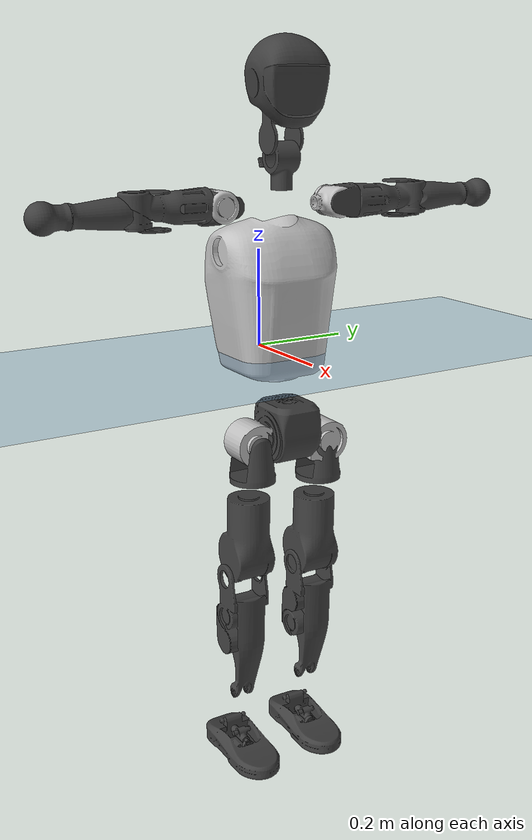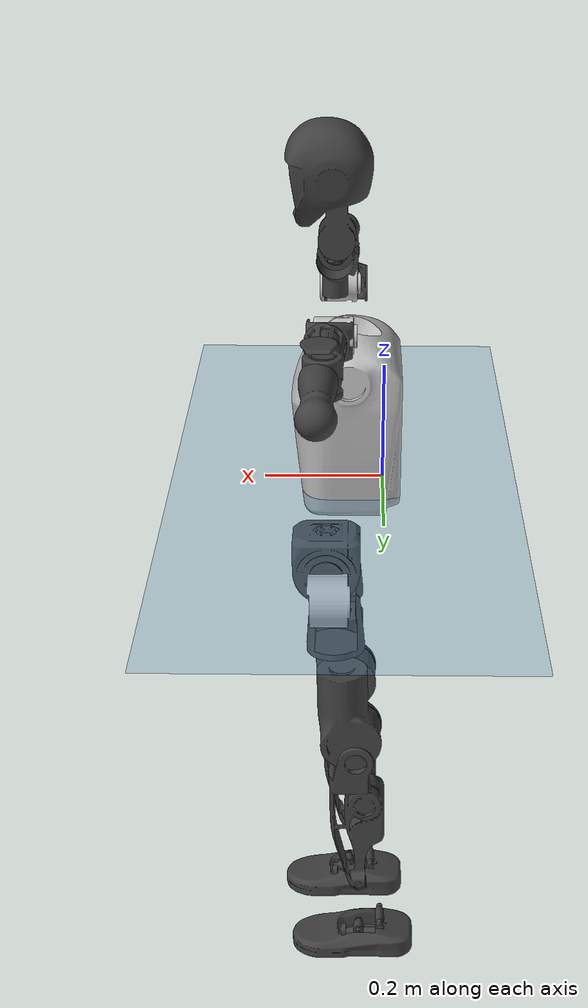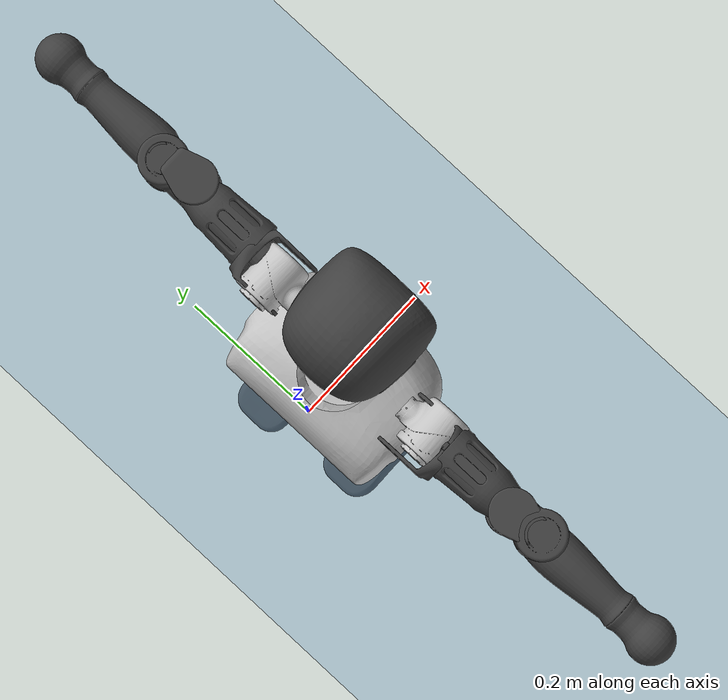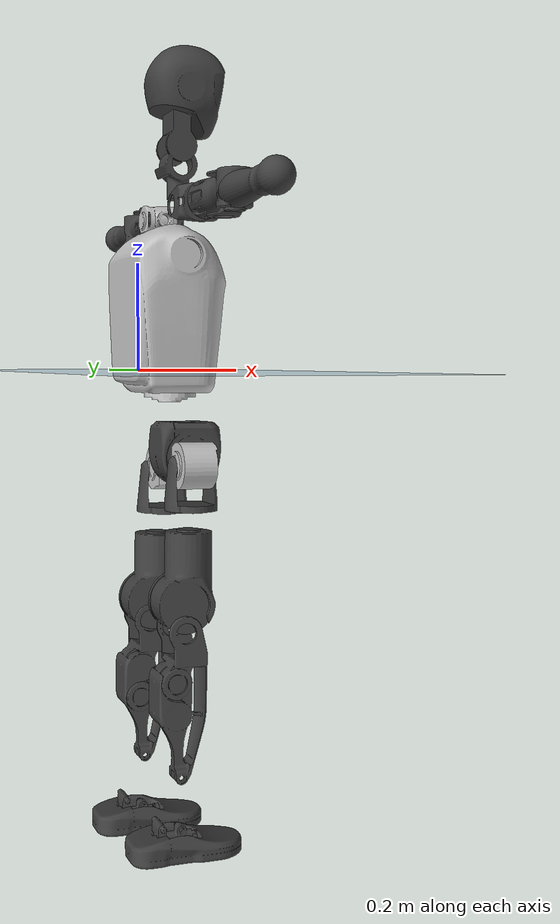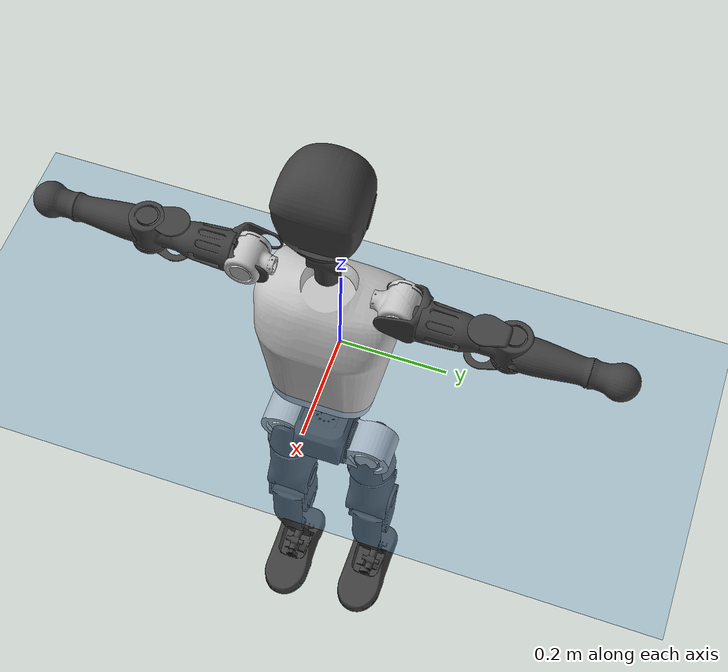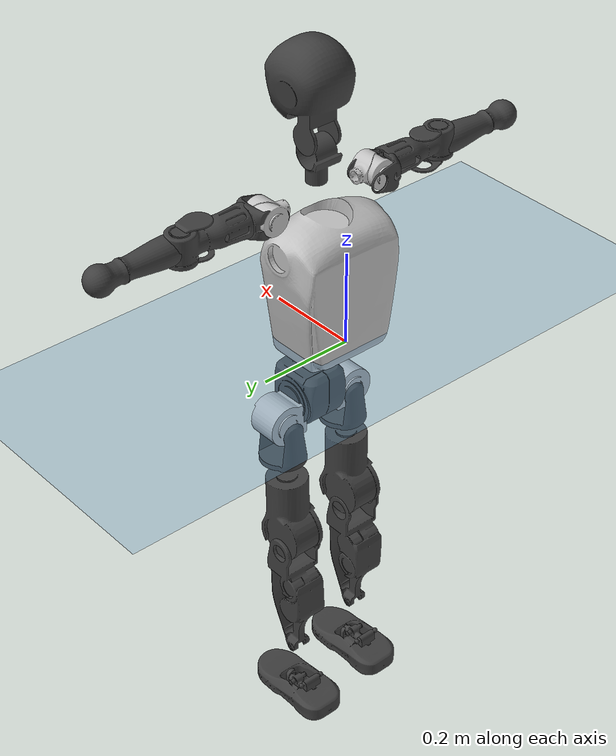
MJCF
<mujoco model="T1">
  <compiler angle="radian" assetdir="assets" balanceinertia="true" inertiafromgeom="false"/>

  <option timestep="0.005" density="1.2" viscosity="2e-05"/>

  <size nkey="1"/>

  <visual>
    <quality shadowsize="8192"/>
    <map shadowclip="0.5"/>
  </visual>

  <default>
    <default class="/">
      <joint armature="0.01" damping="0.01" frictionloss="0.1"/>
      <geom contype="0" conaffinity="0" group="1" solref="-1000 -80"/>
      <site size="0.01 0.005 0.005" group="5"/>
      <general forcelimited="true" biastype="affine" gainprm="25" biasprm="0 -25 -0.6"/>
      <default class="t1">
        <geom rgba="0.25 0.25 0.25 1"/>
        <default class="visual">
          <geom type="mesh" group="2"/>
        </default>
        <default class="collision">
          <geom group="3"/>
        </default>
        <default class="foot">
          <geom size="0.1115 0.05 0.015" type="box" condim="6" group="4" priority="1" solimp="0.015 1 0.015"/>
        </default>
        <default class="reward_collision_sphere">
          <geom group="5" rgba="1 0 0 1"/>
        </default>
      </default>
    </default>
  </default>

  <asset>
    <texture type="skybox" colorspace="auto" name="//unnamed_texture_0" builtin="gradient" rgb1="0.95 0.95 0.95" rgb2="0.95 0.95 0.95" width="100" height="600"/>
    <texture type="2d" colorspace="auto" name="texplane" builtin="checker" rgb1="0.345 0.575 0.748" rgb2="0.345 0.575 0.748" markrgb="1 1 1" width="512" height="512"/>
    <material name="MatPlane" class="/" texture="texplane" texuniform="true" texrepeat="2 2" specular="0.9"/>
    <mesh name="Trunk" class="/" file="Trunk.stl"/>
    <mesh name="H1" class="/" file="H1.stl"/>
    <mesh name="H2" class="/" file="H2.stl"/>
    <mesh name="AL1" class="/" file="AL1.stl"/>
    <mesh name="AL2" class="/" file="AL2.stl"/>
    <mesh name="AL3" class="/" file="AL3.stl"/>
    <mesh name="left_hand_link" class="/" file="left_hand_link.stl"/>
    <mesh name="AR1" class="/" file="AR1.stl"/>
    <mesh name="AR2" class="/" file="AR2.stl"/>
    <mesh name="AR3" class="/" file="AR3.stl"/>
    <mesh name="right_hand_link" class="/" file="right_hand_link.stl"/>
    <mesh name="Waist" class="/" file="Waist.stl"/>
    <mesh name="Hip_Pitch_Left" class="/" file="Hip_Pitch_Left.stl"/>
    <mesh name="Hip_Roll_Left" class="/" file="Hip_Roll_Left.stl"/>
    <mesh name="Hip_Yaw_Left" class="/" file="Hip_Yaw_Left.stl"/>
    <mesh name="Shank_Left" class="/" file="Shank_Left.stl"/>
    <mesh name="Ankle_Cross_Left" class="/" file="Ankle_Cross_Left.stl"/>
    <mesh name="left_foot_link" class="/" file="left_foot_link.stl"/>
    <mesh name="Hip_Pitch_Right" class="/" file="Hip_Pitch_Right.stl"/>
    <mesh name="Hip_Roll_Right" class="/" file="Hip_Roll_Right.stl"/>
    <mesh name="Hip_Yaw_Right" class="/" file="Hip_Yaw_Right.stl"/>
    <mesh name="Shank_Right" class="/" file="Shank_Right.stl"/>
    <mesh name="Ankle_Cross_Right" class="/" file="Ankle_Cross_Right.stl"/>
    <mesh name="right_foot_link" class="/" file="right_foot_link.stl"/>
  </asset>

  <worldbody>
    <geom name="floor" class="/" size="100 100 0.125" type="plane" group="0" material="MatPlane"/>
    <light name="toplight_shadow" class="/" pos="0 0 5" dir="0.0990148 0.0990148 -0.990148" type="directional" ambient="0.04 0.04 0.04" diffuse="0.55 0.55 0.55" specular="0.12 0.12 0.12"/>
    <light name="toplight_fill" class="/" pos="0 0 5" dir="0.0990148 0.0990148 -0.990148" type="directional" castshadow="false" ambient="0.04 0.04 0.04" diffuse="0.3 0.3 0.3" specular="0.08 0.08 0.08"/>
    <body name="trunk" childclass="t1" pos="0.000191374 -0.000731722 -0.00786509" quat="1 0.000172715 -0.000111525 0.000494726">
      <inertial pos="0.0708228 0.00599103 0.143264" quat="0.99947 -0.015515 -0.014515 -0.02468" mass="17.5718" diaginertia="0.360258 0.0175802 0.268256"/>
      <joint name="//unnamed_joint_0" type="free" armature="0" damping="0" frictionloss="0"/>
      <geom name="//unnamed_geom_1" class="visual" rgba="0.76 0.76 0.76 1" mesh="Trunk"/>
      <geom name="//unnamed_geom_2" class="collision" size="0.0851997 0.1136 0.170399" pos="0.0794063 0 0.162541" type="box"/>
      <geom name="//unnamed_geom_3" class="reward_collision_sphere" size="0.13064" pos="0.0794063 0 0.135451"/>
      <geom name="//unnamed_geom_4" class="reward_collision_sphere" size="0.0170399" pos="0.0794063 0.0620532 0"/>
      <geom name="//unnamed_geom_5" class="reward_collision_sphere" size="0.0170399" pos="0.0794063 -0.0620532 0"/>
      <geom name="//unnamed_geom_6" class="reward_collision_sphere" size="0.0170399" pos="0.0794063 0.078114 0.243812"/>
      <geom name="//unnamed_geom_7" class="reward_collision_sphere" size="0.0170399" pos="0.0794063 -0.078114 0.243812"/>
      <site name="imu" pos="-0.0010972 -0.0473999 0.0181153" size="0.01136"/>
      <camera name="track" pos="0 -1.46007 0" quat="0.707107 0.707107 0 0" mode="trackcom"/>
      <camera name="ego_camera" pos="0.16146 0 0.568895" quat="-0.5 -0.5 0.5 0.5"/>
      <body name="H1" pos="0.0813645 0.00510147 0.331494" quat="0.999989 -0.00191489 -0.0034084 -0.00240791">
        <inertial pos="-0.00365638 -0.00167995 0.0740214" quat="0.762702 -0.00639205 -0.00915806 0.646654" mass="0.750192" diaginertia="0.00106961 4.48571e-05 0.000719655"/>
        <joint name="AAHead_yaw" pos="0 0 0" axis="-0.00150434 0.0134786 0.999908" range="-1.64341 1.34484" armature="0.010646" damping="0.0431597" frictionloss="0.149209"/>
        <geom name="//unnamed_geom_8" class="visual" mesh="H1"/>
        <body name="H2" pos="-0.00229429 0.000858127 0.0965148" quat="0.999981 0.00232241 0.00568456 0.000760577">
          <inertial pos="0.0140004 -0.00602844 0.125801" quat="0.991662 0.102116 -0.0486431 -0.0617409" mass="0.914042" diaginertia="0.00809613 0.000376039 0.00815599"/>
          <joint name="Head_pitch" pos="0 0 0" axis="-0.0331486 -0.999266 0.0192137" stiffness="0.0303669" range="-1.24646 0.385554" armature="0.0122913" damping="0" frictionloss="0.122438"/>
          <geom name="//unnamed_geom_9" class="visual" mesh="H2"/>
          <geom name="//unnamed_geom_10" class="collision" size="0.0908797" pos="0.0132344 0 0.148996"/>
          <geom name="//unnamed_geom_11" class="reward_collision_sphere" size="0.10224" pos="0.0264688 0 0.135451"/>
        </body>
      </body>
      <body name="AL1" pos="0.0820205 0.0801409 0.303296" quat="0.999999 -0.000132792 0.00103645 -0.000476818">
        <inertial pos="-0.00340841 0.038393 -0.00079534" quat="0.507068 0.495099 -0.466642 0.529154" mass="0.860719" diaginertia="0.00641316 0.000292722 0.001437"/>
        <joint name="Left_Shoulder_Pitch" pos="0 0 0" axis="0.0163593 0.999649 -0.0208278" stiffness="0.0257374" range="-3.52256 1.24809" armature="0.0156424" damping="0.0349" frictionloss="0.137728"/>
        <geom name="//unnamed_geom_12" class="visual" rgba="0.76 0.76 0.76 1" mesh="AL1"/>
        <body name="AL2" pos="0.00566191 0.0350819 0.000552732" quat="0.999987 -0.00327343 -0.00341454 -0.00173305">
          <inertial pos="-0.0065722 0.0224704 -0.000627014" quat="0.476273 0.510874 -0.509541 0.502533" mass="0.258546" diaginertia="0.00179142 7.96093e-05 0.000898368"/>
          <joint name="Left_Shoulder_Roll" pos="0 0 0" axis="-0.999894 0.0121539 -0.0080465" stiffness="0.0015867" range="-1.57479 1.75969" armature="0.00773652" damping="0" frictionloss="0.112399"/>
          <geom name="//unnamed_geom_13" class="visual" mesh="AL2"/>
          <body name="AL3" pos="0.00702588 0.0479569 0.0001291" quat="0.999989 0.00406374 -0.00220418 -0.00123971">
            <inertial pos="-0.0106675 0.0615468 -0.00486642" quat="0.733427 0.678242 0.0244426 0.0383982" mass="1.26268" diaginertia="0.0455679 0.00190261 0.00244029"/>
            <joint name="Left_Elbow_Pitch" pos="0 0 0" axis="0.00246943 -0.999959 -0.00869726" range="-2.29663 2.03861" armature="0.00669043" damping="0.0113929" frictionloss="0.0479846"/>
            <geom name="//unnamed_geom_14" class="visual" mesh="AL3"/>
            <geom name="//unnamed_geom_15" class="collision" size="0.0340799 0.0851997" pos="0 0.0365019 0" quat="0.707105 0.707108 0 0" type="cylinder"/>
            <geom name="//unnamed_geom_16" class="reward_collision_sphere" size="0.0408958"/>
            <body name="left_hand_link" pos="0.00638245 0.103704 0.000559837" quat="0.999984 -0.00182012 0.00394723 0.00359952">
              <inertial pos="0.000856298 0.0726667 0.00170639" quat="0.706091 0.708089 -0.00575413 0.00347175" mass="0.516923" diaginertia="0.0290506 0.001539 0.0011109"/>
              <joint name="Left_Elbow_Yaw" pos="0 0 0" axis="0.0428229 -0.0138993 0.998986" range="-2.34331 -0.229221" armature="0.0158545" damping="0.0526833" frictionloss="0.0851979"/>
              <geom name="//unnamed_geom_17" class="visual" mesh="left_hand_link"/>
              <geom name="//unnamed_geom_18" class="collision" size="0.0340799 0.0993996" pos="0 0.0949049 0" quat="0.707105 0.707108 0 0" type="cylinder"/>
              <geom name="//unnamed_geom_19" class="reward_collision_sphere" size="0.0567998"/>
              <geom name="//unnamed_geom_20" class="reward_collision_sphere" size="0.0397599" pos="0 0.0803041 0"/>
              <geom name="//unnamed_geom_21" class="reward_collision_sphere" size="0.0397599" pos="0 0.156958 0"/>
            </body>
          </body>
        </body>
      </body>
      <body name="AR1" pos="0.0764592 -0.0855367 0.306897" quat="1 5.6544e-05 0.000373081 -3.63833e-05">
        <inertial pos="0.000282719 -0.0236668 0.00186136" quat="0.49838 0.502453 -0.507501 0.491529" mass="0.722857" diaginertia="0.00542894 0.000283547 0.00130622"/>
        <joint name="Right_Shoulder_Pitch" pos="0 0 0" axis="-0.0564235 -0.998233 0.0186576" stiffness="0.021837" range="-1.22462 3.09907" armature="0.0118063" damping="0" frictionloss="0.175751"/>
        <geom name="//unnamed_geom_22" class="visual" rgba="0.76 0.76 0.76 1" mesh="AR1"/>
        <body name="AR2" pos="-0.0121948 -0.0238388 -0.00176092" quat="1 -5.19252e-05 0.000122568 -0.000221168">
          <inertial pos="-0.00257012 -0.0267498 0.00134926" quat="0.500016 0.491924 -0.516437 0.49121" mass="0.176768" diaginertia="0.00138857 6.60952e-05 0.000689668"/>
          <joint name="Right_Shoulder_Roll" pos="0 0 0" axis="-0.999022 0.025714 0.0359767" stiffness="0.0414538" range="-1.69794 1.41874" armature="0.0116376" damping="0.0504283" frictionloss="0.0649254"/>
          <geom name="//unnamed_geom_23" class="visual" mesh="AR2"/>
          <body name="AR3" pos="0.0091186 -0.045229 0.00438028" quat="0.999997 -0.000273521 0.000345927 0.0025723">
            <inertial pos="-0.0016629 -0.0704314 0.00271484" quat="0.712946 0.70096 0.0190376 0.000922496" mass="1.12849" diaginertia="0.0437978 0.00219904 0.00233448"/>
            <joint name="Right_Elbow_Pitch" pos="0 0 0" axis="-0.000853347 0.999996 0.00270303" stiffness="0.0631346" range="-2.10806 2.45086" armature="0.0109137" damping="0.00893176" frictionloss="0.106612"/>
            <geom name="//unnamed_geom_24" class="visual" mesh="AR3"/>
            <geom name="//unnamed_geom_25" class="collision" size="0.0340799 0.0851997" pos="0 -0.0365019 0" quat="0.707105 0.707108 0 0" type="cylinder"/>
            <geom name="//unnamed_geom_26" class="reward_collision_sphere" size="0.0408958"/>
            <body name="right_hand_link" pos="-0.00336176 -0.104902 -0.00484918" quat="1 8.99438e-06 9.0443e-05 -2.99836e-06">
              <inertial pos="-0.000361216 -0.0786894 0.0119155" quat="0.689353 0.724096 -0.0187265 0.0112857" mass="0.593029" diaginertia="0.0358229 0.00182496 0.00107947"/>
              <joint name="Right_Elbow_Yaw" pos="0 0 0" axis="-0.029965 0.018883 0.999373" stiffness="0.00362837" range="-0.0674743 2.25393" armature="0.0117184" damping="0.0145847" frictionloss="0.109667"/>
              <geom name="//unnamed_geom_27" class="visual" mesh="right_hand_link"/>
              <geom name="//unnamed_geom_28" class="collision" size="0.0340799 0.0993996" pos="0 -0.0949049 0" quat="0.707105 0.707108 0 0" type="cylinder"/>
              <geom name="//unnamed_geom_29" class="reward_collision_sphere" size="0.0567998"/>
              <geom name="//unnamed_geom_30" class="reward_collision_sphere" size="0.0397599" pos="0 -0.0803041 0"/>
              <geom name="//unnamed_geom_31" class="reward_collision_sphere" size="0.0397599" pos="0 -0.156958 0"/>
            </body>
          </body>
        </body>
      </body>
      <body name="Waist" pos="0.0955951 0.00903905 -0.157649" quat="0.999992 -0.00231147 0.00328344 -0.000153899">
        <inertial pos="0.00420439 0.00804713 0.00980331" quat="0.983899 0.00152263 -0.178708 0.00186737" mass="3.94413" diaginertia="0.0250981 0.00126589 0.0259717"/>
        <joint name="Waist" pos="0 0 0" axis="-0.0131707 0.028119 0.999518" range="-1.60284 1.54791" armature="0.00987833" damping="0.0226778" frictionloss="0.174552"/>
        <geom name="//unnamed_geom_32" class="visual" mesh="Waist"/>
        <body name="Hip_Pitch_Left" pos="-0.0034401 0.0877849 -0.00822209" quat="0.999991 -0.000922027 0.00210361 -0.0036312">
          <inertial pos="0.00279203 -0.00385487 -0.0257518" quat="0.975751 0.216605 0.0244264 -0.0199141" mass="1.50011" diaginertia="0.00785524 0.00027385 0.006379"/>
          <joint name="Left_Hip_Pitch" pos="0 0 0" axis="-0.00447334 0.999986 0.00285227" stiffness="0.0512106" range="-1.80283 1.52253" armature="0.0124245" damping="0.0108254" frictionloss="0.0942083"/>
          <geom name="//unnamed_geom_33" class="visual" rgba="0.76 0.76 0.76 1" mesh="Hip_Pitch_Left"/>
          <body name="Hip_Roll_Left" pos="-0.00968436 -0.000373843 -0.032712" quat="0.999981 0.00299861 0.00263969 -0.00471382">
            <inertial pos="0.0118296 0.00854318 -0.0747354" quat="0.701202 0.0476702 0.0183911 0.71113" mass="0.566898" diaginertia="0.00779385 0.000310605 0.00239884"/>
            <joint name="Left_Hip_Roll" pos="0 0 0" axis="-0.998126 0.0605716 0.00872275" range="-1.41677 -0.00304124" armature="0.00620207" damping="0.00354826" frictionloss="0.108999"/>
            <geom name="//unnamed_geom_34" class="visual" mesh="Hip_Roll_Left"/>
            <geom name="//unnamed_geom_35" class="reward_collision_sphere" size="0.0624798"/>
            <body name="Hip_Yaw_Left" pos="-0.0127537 -0.00067812 -0.119905" quat="0.999986 -0.00446263 0.00193414 0.0022016">
              <inertial pos="-0.0099632 -0.000706244 -0.11592" quat="0.695657 -0.0335175 -0.0327806 0.716842" mass="3.19153" diaginertia="0.115756 0.00535262 0.0108489"/>
              <joint name="Left_Hip_Yaw" pos="0 0 0" axis="0.00855908 0.0220672 -0.99972" range="-1.03628 1.22352" armature="0.011365" damping="0.00648079" frictionloss="0.0876655"/>
              <geom name="//unnamed_geom_36" class="visual" mesh="Hip_Yaw_Left"/>
              <geom name="//unnamed_geom_37" class="collision" size="0.0567998 0.0908797" type="cylinder"/>
              <body name="Shank_Left" pos="-0.0223102 0.00272759 -0.170096" quat="1 0.000230053 0.000654122 -0.000486135">
                <inertial pos="-0.0165855 0.00954869 -0.168008" quat="0.997405 -0.00197597 -0.0265583 0.0668904" mass="2.63177" diaginertia="0.142801 0.00762674 0.00823054"/>
                <joint name="Left_Knee_Pitch" pos="0 0 0" axis="-0.0298898 0.999467 -0.0131187" range="-0.109922 2.26105" armature="0.0124538" damping="0.00108289" frictionloss="0.1159"/>
                <geom name="//unnamed_geom_38" class="visual" mesh="Shank_Left"/>
                <geom name="//unnamed_geom_39" class="collision" size="0.0567998 0.0851997" pos="0 0 -0.162541" type="cylinder"/>
                <geom name="//unnamed_geom_40" class="reward_collision_sphere" size="0.0738397"/>
                <body name="Ankle_Cross_Left" pos="0.0014508 0.00420467 -0.390087" quat="0.999997 -0.00222317 0.00133614 -0.00046205">
                  <inertial pos="-0.0123177 -0.00265483 -0.00569587" quat="0.436527 0.554121 0.550537 0.446433" mass="0.0970691" diaginertia="0.000115192 5.77928e-06 5.37611e-05"/>
                  <joint name="Left_Ankle_Pitch" pos="0 0 0" axis="0.0215933 0.999762 0.00325702" range="-0.823042 0.29644" armature="0.0116928" damping="0" frictionloss="0.154912"/>
                  <geom name="//unnamed_geom_41" class="visual" mesh="Ankle_Cross_Left"/>
                  <body name="left_foot_link" pos="0.00168981 -0.00510331 -0.0106561" quat="1 0.000656999 -0.000224216 0.000224832">
                    <inertial pos="-0.00335481 -0.00841309 -0.0138547" quat="-0.0310679 0.61541 0.00195565 0.787592" mass="1.10434" diaginertia="0.00900102 0.000449397 0.00916438"/>
                    <joint name="Left_Ankle_Roll" pos="0 0 0" axis="-0.999552 0.0262165 0.0144474" range="-0.386569 0.225463" armature="0.00520929" damping="0.00938597" frictionloss="0.0966492"/>
                    <geom name="//unnamed_geom_42" class="visual" mesh="left_foot_link"/>
                    <geom name="left_foot" class="foot" size="0.10639 0.0669453 0.0182506" pos="0.0132344 0 -0.0203177"/>
                    <geom name="//unnamed_geom_44" class="reward_collision_sphere" size="0.0590718" pos="0.0132344 0 -0.0203177"/>
                    <geom name="//unnamed_geom_45" class="reward_collision_sphere" size="0.0340799" pos="0.125727 -0.0167909 -0.0203177"/>
                    <geom name="//unnamed_geom_46" class="reward_collision_sphere" size="0.0340799" pos="-0.0926407 -0.0167909 -0.0203177"/>
                    <site name="left_foot" class="foot" pos="0.0132344 0 -0.0203177" size="0.01136"/>
                  </body>
                </body>
              </body>
            </body>
          </body>
        </body>
        <body name="Hip_Pitch_Right" pos="-0.00903162 -0.0809846 0.00783377" quat="1 -0.000574907 -0.000121977 -0.000419945">
          <inertial pos="0.0103266 0.00448192 -0.0236554" quat="0.971177 -0.23688 0.0156267 0.0214265" mass="1.65449" diaginertia="0.0075881 0.000316012 0.00604154"/>
          <joint name="Right_Hip_Pitch" pos="0 0 0" axis="-0.00961396 -0.999944 -0.00449903" stiffness="0.0222847" range="-1.59299 1.91072" armature="0.00447658" damping="0.00277666" frictionloss="0.140323"/>
          <geom name="//unnamed_geom_47" class="visual" rgba="0.76 0.76 0.76 1" mesh="Hip_Pitch_Right"/>
          <body name="Hip_Roll_Right" pos="-0.00192841 0.00533406 -0.0272659" quat="1 0.00027485 2.99387e-05 6.94149e-05">
            <inertial pos="0.00264897 0.0107866 -0.0651225" quat="0.683077 -0.0407485 -0.0196752 0.728943" mass="0.648415" diaginertia="0.0082003 0.000370785 0.0027152"/>
            <joint name="Right_Hip_Roll" pos="0 0 0" axis="-0.999998 0.00184673 -0.00031182" stiffness="0.00966307" range="-0.21336 1.55212" armature="0.0104624" damping="0.00510193" frictionloss="0.159168"/>
            <geom name="//unnamed_geom_48" class="visual" mesh="Hip_Roll_Right"/>
            <geom name="//unnamed_geom_49" class="reward_collision_sphere" size="0.0624798"/>
            <body name="Hip_Yaw_Right" pos="-0.00875525 -0.00471203 -0.115936" quat="0.999993 -0.00276087 0.00101679 -0.00232418">
              <inertial pos="-0.00914463 0.0121469 -0.125134" quat="0.723849 -0.0245609 -0.0282676 0.688942" mass="3.42252" diaginertia="0.11885 0.00597618 0.0140086"/>
              <joint name="Right_Hip_Yaw" pos="0 0 0" axis="-0.00598151 -0.0277617 -0.999597" range="-0.896906 0.826632" armature="0.0119249" damping="0" frictionloss="0.110756"/>
              <geom name="//unnamed_geom_50" class="visual" mesh="Hip_Yaw_Right"/>
              <geom name="//unnamed_geom_51" class="collision" size="0.0567998 0.0908797" type="cylinder"/>
              <body name="Shank_Right" pos="-0.0191417 -0.00536304 -0.184092" quat="1 4.06644e-06 -4.43647e-06 -5.3496e-06">
                <inertial pos="-0.00927363 -0.00136731 -0.162095" quat="0.999083 -0.00279006 -0.0271395 -0.0329867" mass="2.84012" diaginertia="0.183199 0.00833214 0.0099237"/>
                <joint name="Right_Knee_Pitch" pos="0 0 0" axis="0.00492433 -0.999706 -0.0237305" stiffness="0.0455359" range="-2.43855 -0.0780448" armature="0.0115523" damping="0.00258093" frictionloss="0.122422"/>
                <geom name="//unnamed_geom_52" class="visual" mesh="Shank_Right"/>
                <geom name="//unnamed_geom_53" class="collision" size="0.0567998 0.0851997" pos="0 0 -0.162541" type="cylinder"/>
                <geom name="//unnamed_geom_54" class="reward_collision_sphere" size="0.0738397"/>
                <body name="Ankle_Cross_Right" pos="0.00302144 -0.00220234 -0.383202" quat="0.999991 0.0031458 0.00283963 0.000823737">
                  <inertial pos="-0.00343611 0.00167791 -0.000178757" quat="0.465617 0.535725 0.577585 0.403231" mass="0.117487" diaginertia="0.000151957 5.3555e-06 6.60378e-05"/>
                  <joint name="Right_Ankle_Pitch" pos="0 0 0" axis="0.042908 -0.999073 -0.00356882" stiffness="0.0429406" range="-0.493208 0.804415" armature="0.011926" damping="0.0441347" frictionloss="0.161208"/>
                  <geom name="//unnamed_geom_55" class="visual" mesh="Ankle_Cross_Right"/>
                  <body name="right_foot_link" pos="-8.00076e-05 0.00115598 -0.0212021" quat="0.999998 -0.000536916 -0.00166162 1.36252e-05">
                    <inertial pos="0.0120333 0.00718474 -0.0113257" quat="0.0334787 0.616235 -0.0122202 0.786756" mass="0.992078" diaginertia="0.0111728 0.000502805 0.0110817"/>
                    <joint name="Right_Ankle_Roll" pos="0 0 0" axis="-0.999993 -0.0038042 -0.000136067" range="-0.419221 0.459243" armature="0.00859124" damping="0" frictionloss="0.122074"/>
                    <geom name="//unnamed_geom_56" class="visual" mesh="right_foot_link"/>
                    <geom name="right_foot" class="foot" size="0.0945046 0.0459937 0.0156804" pos="0.0132344 0 -0.0203177"/>
                    <geom name="//unnamed_geom_58" class="reward_collision_sphere" size="0.0454398"/>
                    <geom name="//unnamed_geom_59" class="reward_collision_sphere" size="0.0340799" pos="0.0132344 0 -0.0203177"/>
                    <geom name="//unnamed_geom_60" class="reward_collision_sphere" size="0.0340799" pos="0.125727 0.0167909 -0.0203177"/>
                    <geom name="//unnamed_geom_61" class="reward_collision_sphere" size="0.0340799" pos="-0.0926407 0.0167909 -0.0203177"/>
                    <site name="right_foot" class="foot" pos="0.0132344 0 -0.0203177" size="0.01136"/>
                  </body>
                </body>
              </body>
            </body>
          </body>
        </body>
      </body>
    </body>
  </worldbody>

  <contact>
    <pair class="/" geom1="floor" geom2="left_foot" name="//unnamed_contact_0"/>
    <pair class="/" geom1="floor" geom2="right_foot" name="//unnamed_contact_1"/>
  </contact>

  <actuator>
    <general name="AAHead_yaw" class="/" joint="AAHead_yaw" forcerange="-5.88429 5.88429" gainprm="28.4281" biasprm="0 -28.4281 -0.783473"/>
    <general name="Head_pitch" class="/" joint="Head_pitch" forcerange="-5.73374 5.73374" gainprm="28.4281" biasprm="0 -28.4281 -0.783473"/>
    <general name="Left_Shoulder_Pitch" class="/" joint="Left_Shoulder_Pitch" forcerange="-23.0982 23.0982" gainprm="28.4281" biasprm="0 -28.4281 -0.783473"/>
    <general name="Left_Shoulder_Roll" class="/" joint="Left_Shoulder_Roll" forcerange="-20.1146 20.1146" gainprm="28.4281" biasprm="0 -28.4281 -0.783473"/>
    <general name="Left_Elbow_Pitch" class="/" joint="Left_Elbow_Pitch" forcerange="-12.5827 12.5827" gainprm="28.4281" biasprm="0 -28.4281 -0.783473"/>
    <general name="Left_Elbow_Yaw" class="/" joint="Left_Elbow_Yaw" forcerange="-25.5411 25.5411" gainprm="28.4281" biasprm="0 -28.4281 -0.783473"/>
    <general name="Right_Shoulder_Pitch" class="/" joint="Right_Shoulder_Pitch" forcerange="-29.135 29.135" gainprm="28.4281" biasprm="0 -28.4281 -0.783473"/>
    <general name="Right_Shoulder_Roll" class="/" joint="Right_Shoulder_Roll" forcerange="-19.1065 19.1065" gainprm="28.4281" biasprm="0 -28.4281 -0.783473"/>
    <general name="Right_Elbow_Pitch" class="/" joint="Right_Elbow_Pitch" forcerange="-12.3309 12.3309" gainprm="28.4281" biasprm="0 -28.4281 -0.783473"/>
    <general name="Right_Elbow_Yaw" class="/" joint="Right_Elbow_Yaw" forcerange="-17.6349 17.6349" gainprm="28.4281" biasprm="0 -28.4281 -0.783473"/>
    <general name="Waist" class="/" joint="Waist" forcerange="-35.9937 35.9937" gainprm="28.4281" biasprm="0 -28.4281 -0.783473"/>
    <general name="Left_Hip_Pitch" class="/" joint="Left_Hip_Pitch" forcerange="-56.928 56.928" gainprm="28.4281" biasprm="0 -28.4281 -0.783473"/>
    <general name="Left_Hip_Roll" class="/" joint="Left_Hip_Roll" forcerange="-21.5323 21.5323" gainprm="28.4281" biasprm="0 -28.4281 -0.783473"/>
    <general name="Left_Hip_Yaw" class="/" joint="Left_Hip_Yaw" forcerange="-49.3655 49.3655" gainprm="28.4281" biasprm="0 -28.4281 -0.783473"/>
    <general name="Left_Knee_Pitch" class="/" joint="Left_Knee_Pitch" forcerange="-47.5757 47.5757" gainprm="28.4281" biasprm="0 -28.4281 -0.783473"/>
    <general name="Left_Ankle_Pitch" class="/" joint="Left_Ankle_Pitch" forcerange="-33.7866 33.7866" gainprm="28.4281" biasprm="0 -28.4281 -0.783473"/>
    <general name="Left_Ankle_Roll" class="/" joint="Left_Ankle_Roll" forcerange="-16.3504 16.3504" gainprm="28.4281" biasprm="0 -28.4281 -0.783473"/>
    <general name="Right_Hip_Pitch" class="/" joint="Right_Hip_Pitch" forcerange="-51.7715 51.7715" gainprm="28.4281" biasprm="0 -28.4281 -0.783473"/>
    <general name="Right_Hip_Roll" class="/" joint="Right_Hip_Roll" forcerange="-41.1294 41.1294" gainprm="28.4281" biasprm="0 -28.4281 -0.783473"/>
    <general name="Right_Hip_Yaw" class="/" joint="Right_Hip_Yaw" forcerange="-41.0844 41.0844" gainprm="28.4281" biasprm="0 -28.4281 -0.783473"/>
    <general name="Right_Knee_Pitch" class="/" joint="Right_Knee_Pitch" forcerange="-45.0465 45.0465" gainprm="28.4281" biasprm="0 -28.4281 -0.783473"/>
    <general name="Right_Ankle_Pitch" class="/" joint="Right_Ankle_Pitch" forcerange="-17.6816 17.6816" gainprm="28.4281" biasprm="0 -28.4281 -0.783473"/>
    <general name="Right_Ankle_Roll" class="/" joint="Right_Ankle_Roll" forcerange="-23.8547 23.8547" gainprm="28.4281" biasprm="0 -28.4281 -0.783473"/>
  </actuator>

  <sensor>
    <gyro site="imu" name="imu_angular_velocity"/>
    <velocimeter site="imu" name="imu_linear_velocity"/>
    <framelinvel objtype="site" objname="left_foot" name="left_foot_global_linear_velocity"/>
    <framelinvel objtype="site" objname="right_foot" name="right_foot_global_linear_velocity"/>
  </sensor>

  <keyframe>
    <key name="home" qpos="0 0 0.6385 1 0 0 0 0 0 0 1.4 0 -0.4 0 -1.4 0 0.4 0 -0.4 0 0 0.8 -0.4 0 0.4 0 0 -0.8 0.4 0"/>
  </keyframe>
</mujoco>
